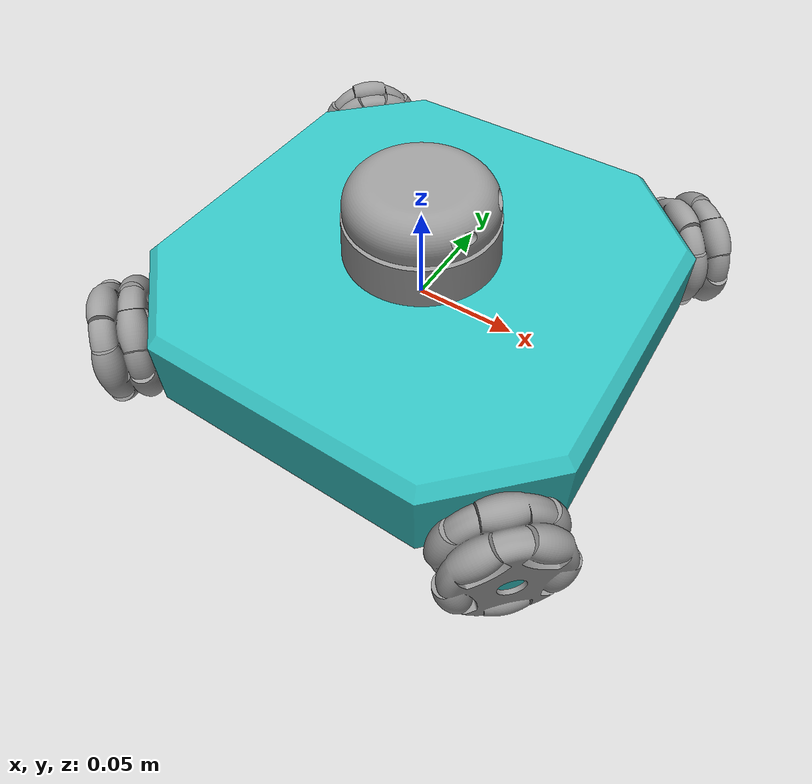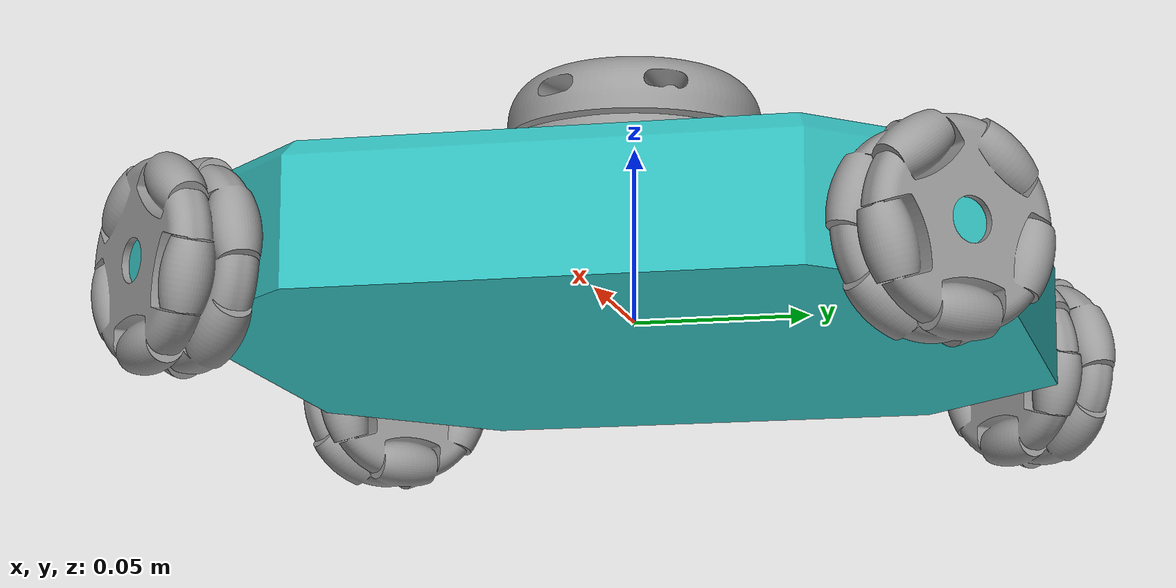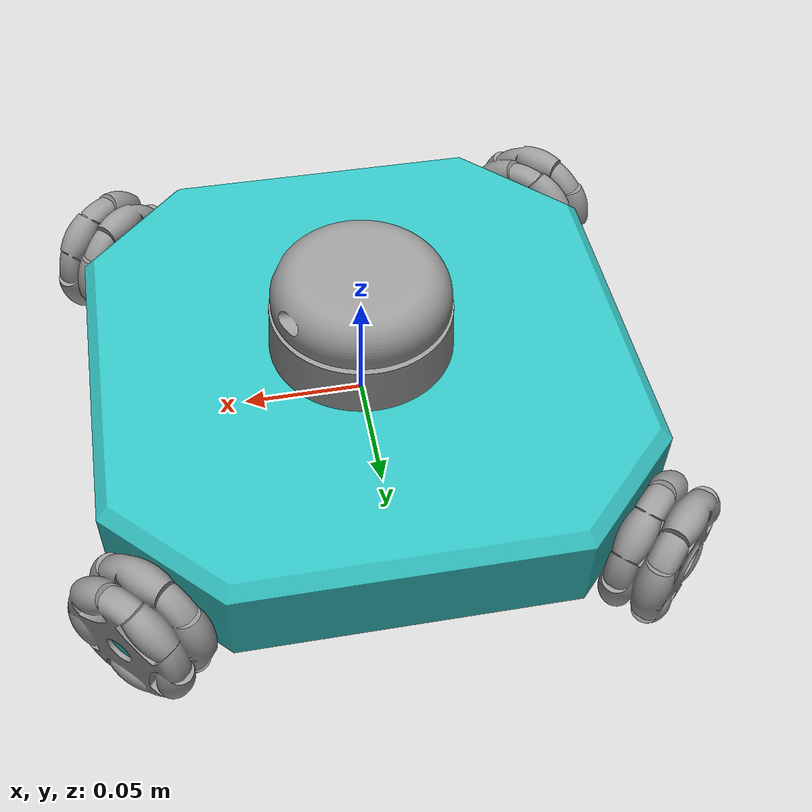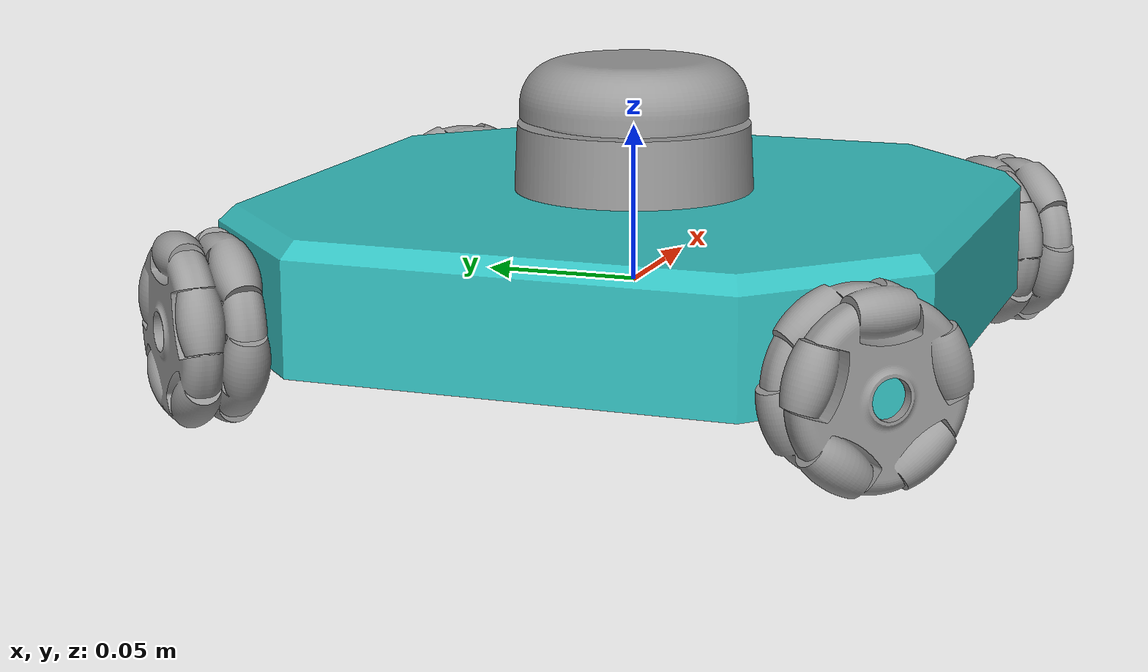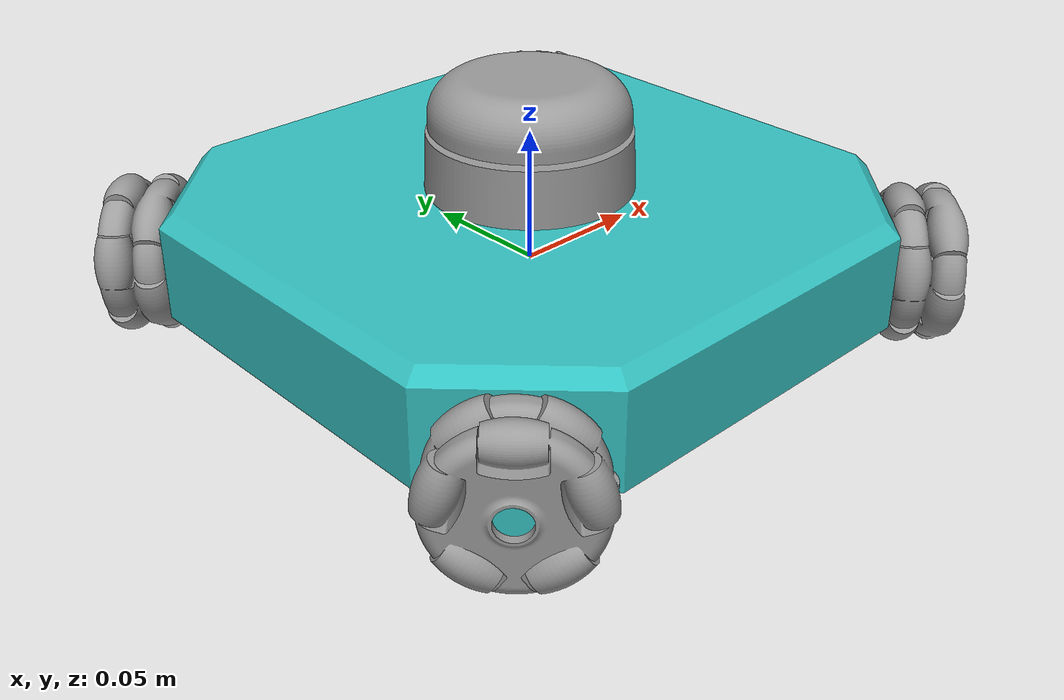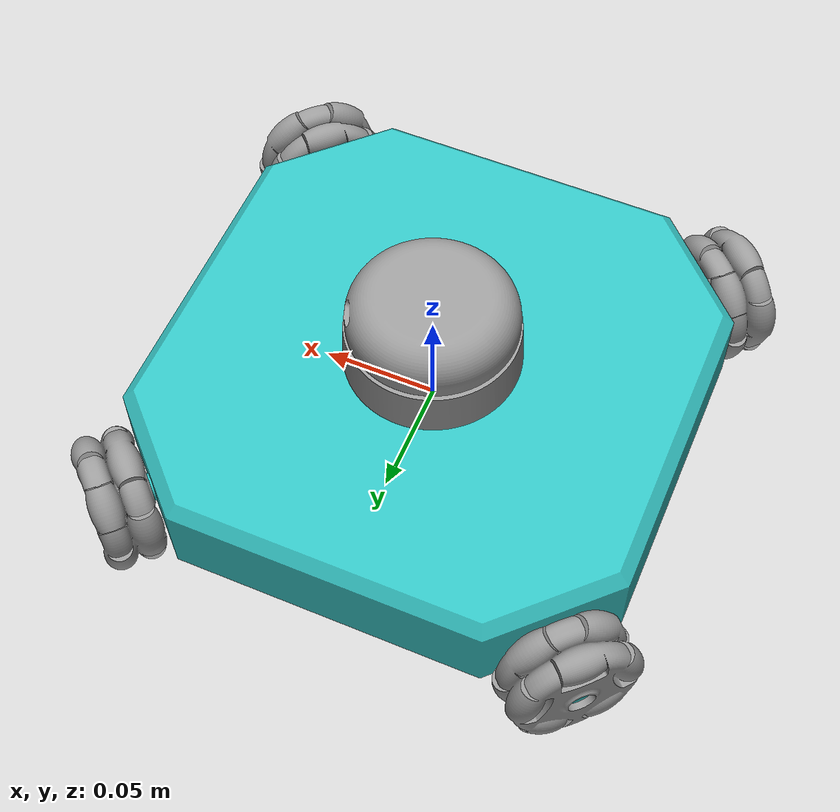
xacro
<?xml version="1.0" ?>

<robot name="robot" xmlns:xacro="http://www.ros.org/wiki/xacro">

    <link name="chassis">
        <visual>
            <geometry>
                <mesh filename="package://project_apr_pkg/meshes/chassis.STL" scale="0.001 0.001 0.001"/>
            </geometry>
        </visual>

        <inertial>
            <mass value="0.2"/>
            <inertia  ixx="0.0007483" ixy="0" ixz="0" iyy="0.0007483" iyz="0" izz="0.0013333" />
        </inertial>
    </link>

    <joint name="chassis_to_lidar" type="fixed">
        <parent link="chassis"/>
        <child link="lidar"/>
        <origin xyz="0 0 0.06"/>
    </joint>

    <link name="lidar">
        <visual>
            <origin xyz="0 0 -0.03"/>
            <geometry>
                <mesh filename="package://project_apr_pkg/meshes/slam_tec_lidar.STL" scale="0.001 0.001 0.001"/>
            </geometry>
        </visual>

        <inertial>
            <mass value="0.01"/>
            <inertia ixx="0.00001" ixy="0" ixz="0" iyy="0.00001" iyz="0" izz="0.00001" />
        </inertial>
    </link>

    <gazebo reference="lidar">
        <material>Gazebo/Grey</material>
    </gazebo>
    <gazebo reference="chassis">
        <material>Gazebo/Turquoise</material>
    </gazebo>

    <xacro:include filename="$(find project_apr_pkg)/model/omni_58mm.xacro"/>

<!-- def = -0.785, 0.785, 2.356, 3.926 -->
    <xacro:omni_wheel_58mm name="wheel1" parent_link="chassis"
                            xyz=" 0.1  0.1 0" driving_angle="2.356"
                            effort_limit="10" speed_limit="50" reduction="1"/>

    <xacro:omni_wheel_58mm name="wheel2" parent_link="chassis"
                            xyz="-0.1  0.1 0" driving_angle="0.785"
                            effort_limit="10" speed_limit="50" reduction="1"/>

    <xacro:omni_wheel_58mm name="wheel3" parent_link="chassis"
                            xyz="-0.1 -0.1 0" driving_angle=" 2.356"
                            effort_limit="10" speed_limit="50" reduction="1"/>

    <xacro:omni_wheel_58mm name="wheel4" parent_link="chassis"
                            xyz=" 0.1 -0.1 0" driving_angle="0.785"
                            effort_limit="10" speed_limit="50" reduction="1"/>

    <gazebo reference="lidar">
        <sensor type="ray" name="head_hokuyo_sensor">
            <pose>0 0 0.02 0 0 0</pose>
            <visualize>false</visualize>
            <update_rate>40</update_rate>
            <ray>
                <scan>
                    <horizontal>
                        <samples>360</samples>
                        <resolution>1</resolution>
                        <!-- default = -3.14 -->
                        <min_angle>-3.14</min_angle>
                        <!-- default = 3.14 -->
                        <max_angle>3.14</max_angle>
                    </horizontal>
                </scan>
                <range>
                    <!-- default = 0.005 -->
                    <min>0.1</min>
                    <max>10.0</max>
                    <resolution>0.001</resolution>
                </range>
            </ray>
            <plugin name="gazebo_ros_head_hokuyo_controller" filename="libgazebo_ros_laser.so">
                <topicName>laser_scan</topicName>
                <frameName>lidar</frameName>
            </plugin>
        </sensor>
    </gazebo>

    <gazebo>
        <!-- X direction -->
        <plugin filename="libgazebo_ros_diff_drive.so" name="differential_drive_controller">
        <alwaysOn>true</alwaysOn>
        <updateRate>40</updateRate>
        <leftJoint>wheel2_joint</leftJoint>
        <rightJoint>wheel4_joint</rightJoint>
        <wheelSeparation>0.2</wheelSeparation>
        <wheelDiameter>0.058</wheelDiameter>
        <torque>0.5</torque>
        <commandTopic>cmd_vel_x</commandTopic>
        <odometryTopic>odom</odometryTopic>
        <odometryFrame>odom</odometryFrame>
        <robotBaseFrame>chassis</robotBaseFrame>

        <!-- some extra stuff to get rid of the warnings -->
        <rosDebugLevel>na</rosDebugLevel>
        <publishWheelTF>false</publishWheelTF>
        <publishOdomTF>true</publishOdomTF>
        <publishWheelJointState>false</publishWheelJointState>
        <wheelAcceleration>0</wheelAcceleration>
        <wheelTorque>0.5</wheelTorque>
        <publishTf>1</publishTf>
        </plugin>

        <!-- Y direction -->
        <plugin filename="libgazebo_ros_diff_drive.so" name="differential_drive_controller">
        <alwaysOn>true</alwaysOn>
        <updateRate>40</updateRate>
        <leftJoint>wheel3_joint</leftJoint>
        <rightJoint>wheel1_joint</rightJoint>
        <wheelSeparation>0.2</wheelSeparation>
        <wheelDiameter>0.058</wheelDiameter>
        <torque>0.5</torque>
        <commandTopic>cmd_vel_y</commandTopic>
        <odometryTopic>odom</odometryTopic>
        <odometryFrame>odom</odometryFrame>
        <robotBaseFrame>chassis</robotBaseFrame>

        <!-- some extra stuff to get rid of the warnings -->
        <rosDebugLevel>na</rosDebugLevel>
        <publishWheelTF>false</publishWheelTF>
        <publishOdomTF>true</publishOdomTF>
        <publishWheelJointState>false</publishWheelJointState>
        <wheelAcceleration>0</wheelAcceleration>
        <wheelTorque>0.5</wheelTorque>
        <publishTf>1</publishTf>
        </plugin>
    </gazebo>

</robot>

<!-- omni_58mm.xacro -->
<robot xmlns:xacro="http://www.ros.org/wiki/xacro">

<xacro:include filename="$(find project_apr_pkg)/model/hardware_interface.xacro"/>

<xacro:macro name="omni_wheel_58mm" params="name parent_link xyz driving_angle effort_limit speed_limit reduction">

    <!-- mass: kg
         radius: m
         width: m -->

    <!-- friction - The physical static friction. For prismatic joints, the units are Newtons.
            For revolving joints, the units are Newton meters.  -->

    <!-- damping - The physical damping value. For prismatic joints, the units are Newton seconds per meter.
            For revolving joints, Newton meter seconds per radian.  -->

    <xacro:property name="mass" value="0.06"/>
    <xacro:property name="radius" value="0.029"/>
    <xacro:property name="width" value="0.025"/>
    <xacro:property name="damping" value="1"/>
    <xacro:property name="friction" value="1"/>

    <!-- create the wheel link first -->
    <link name="${name}">

        <inertial>
            <mass value="${mass}"/>
            <inertia  ixx="1.574e-05" ixy="0" ixz="0" iyy="1.574e-05" iyz="0" izz="2.523e-05" />
        </inertial>
        <visual>
            <geometry>
                <mesh filename="package://project_apr_pkg/meshes/omni_58mm.STL" scale="0.001 0.001 0.001"/>
            </geometry>
        </visual>
        <collision>
            <geometry>
                <cylinder radius="${radius}" length="${width}"/>
            </geometry>
        </collision>

    </link>

    <gazebo reference="${name}">
        <material>Gazebo/Grey</material>

        <!-- friction coeff along the friction axis -->
        <mu1>0.0</mu1>

        <!-- friciton coeff along the axes perpendicular to the friction axis -->
        <mu2>1.0</mu2>

        <!-- direction for friction axis -->
        <fdir1>0 0 1</fdir1>
    </gazebo>

    <joint name="${name}_joint" type="continuous">

        <parent link="${parent_link}"/>
        <child link="${name}"/>
        <origin xyz="${xyz}" rpy="-1.57 0 ${driving_angle}"/>
        <axis xyz="0 0 1" rpy="0 0 0"/>
        <limit effort="${effort_limit}" velocity="${speed_limit}"/>
        <joint_properties damping="${damping}" friction="${friction}" />

    </joint>

    <xacro:joint_transmission joint_name="${name}_joint" reduction="${reduction}"/>

</xacro:macro>

</robot>
